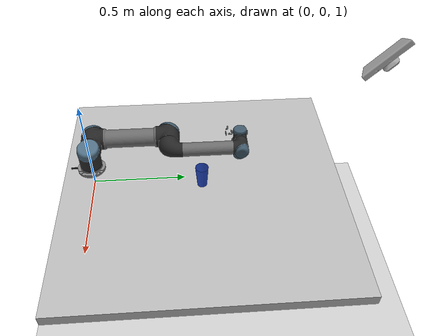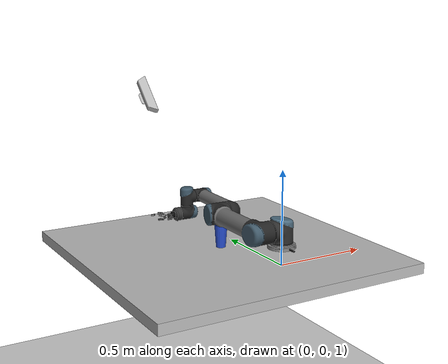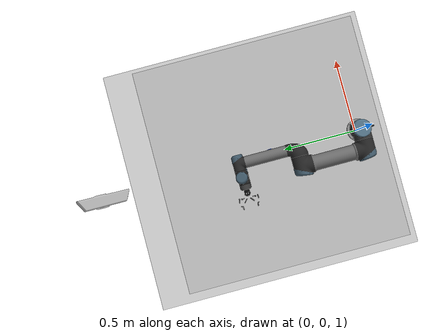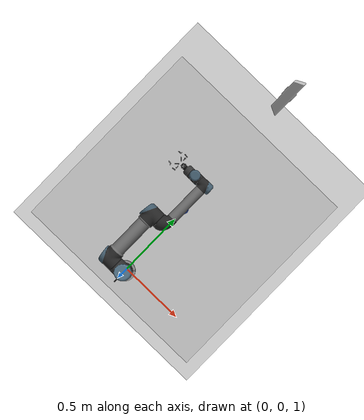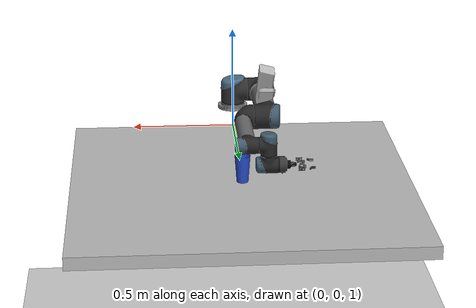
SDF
<sdf version="1.6">
 <world name="default">
  <light name="sun" type="directional">
   <pose>0 0 10 0 -0 0</pose>
   <diffuse>0.8 0.8 0.8 1</diffuse>
   <specular>0.1 0.1 0.1 1</specular>
   <attenuation>
    <range>1000</range>
    <constant>0.9</constant>
    <linear>0.01</linear>
    <quadratic>0.001</quadratic>
   </attenuation>
   <direction>-0.5 0.5 -1</direction>
  </light>
  <model name="ground_plane">
   <static>1</static>
   <link name="link">
    <collision name="collision">
     <geometry><plane><normal>0 0 1</normal><size>100 100</size></plane></geometry>
     <surface><friction><ode><mu>100</mu><mu2>50</mu2></ode></friction></surface>
    </collision>
    <visual name="visual">
     <cast_shadows>0</cast_shadows>
     <geometry><plane><normal>0 0 1</normal><size>100 100</size></plane></geometry>
     <material>
      <script><uri>file://media/materials/scripts/gazebo.material</uri><name>Gazebo/Grey</name></script>
     </material>
    </visual>
   </link>
  </model>
  <gravity>0 0 -9.8</gravity>
  <magnetic_field>6e-06 2.3e-05 -4.2e-05</magnetic_field>
  <atmosphere type="adiabatic"/>
  <physics name="default_physics" default="0" type="ode">
   <max_step_size>0.001</max_step_size>
   <real_time_factor>1</real_time_factor>
   <real_time_update_rate>1000</real_time_update_rate>
  </physics>
  <scene><ambient>0.4 0.4 0.4 1</ambient><background>0.7 0.7 0.7 1</background><shadows>1</shadows></scene>
  <spherical_coordinates>
   <surface_model>EARTH_WGS84</surface_model>
   <latitude_deg>0</latitude_deg>
   <longitude_deg>0</longitude_deg>
   <elevation>0</elevation>
   <heading_deg>0</heading_deg>
  </spherical_coordinates>
  <model name="robot">
   <link name="support_table">
    <pose>0 0.6 0.8 0 -0 0</pose>
    <inertial>
     <mass>1</mass>
     <inertia><ixx>1</ixx><ixy>0</ixy><ixz>0</ixz><iyy>100</iyy><iyz>0</iyz><izz>1</izz></inertia>
    </inertial>
    <collision name="support_table_collision">
     <geometry><box><size>1.6 1.6 0.06</size></box></geometry>
    </collision>
    <visual name="support_table_visual"><geometry><box><size>1.6 1.6 0.06</size></box></geometry></visual>
   </link>
   <joint name="attach_table" type="revolute">
    <child>support_table</child>
    <parent>world</parent>
    <axis>
     <limit><lower>0</lower><upper>0</upper></limit>
     <dynamics>
      <damping>0</damping>
      <friction>0</friction>
      <spring_reference>0</spring_reference>
      <spring_stiffness>0</spring_stiffness>
     </dynamics>
     <use_parent_model_frame>1</use_parent_model_frame>
     <xyz>0 0 1</xyz>
    </axis>
   </joint>
   <link name="base_link">
    <pose>0 0 1 0 -0 0</pose>
    <inertial>
     <pose>0 4e-06 2e-06 0 -0 0</pose>
     <mass>4.00001</mass>
     <inertia>
      <ixx>1.00446</ixx>
      <ixy>0</ixy>
      <ixz>0</ixz>
      <iyy>1.00444</iyy>
      <iyz>-8.99998e-06</iyz>
      <izz>1.00722</izz>
     </inertia>
    </inertial>
    <collision name="base_link_collision">
     <geometry>
      <mesh>
       <scale>1 1 1</scale>
       <uri>/home/shanchuan/rosp/catkin_vg/src/universal_robot/ur_description/meshes/ur5/collision/base.stl</uri>
      </mesh>
     </geometry>
    </collision>
    <collision name="base_link_fixed_joint_lump__kinect_link_collision_1">
     <pose>0 1.5 0.6 0 0.785398 -1.5708</pose>
     <geometry><box><size>0.07 0.3 0.09</size></box></geometry>
    </collision>
    <visual name="base_link_visual">
     <geometry>
      <mesh>
       <scale>1 1 1</scale>
       <uri>/home/shanchuan/rosp/catkin_vg/src/universal_robot/ur_description/meshes/ur5/visual/base.dae</uri>
      </mesh>
     </geometry>
    </visual>
    <visual name="base_link_fixed_joint_lump__kinect_link_visual_1">
     <pose>0 1.5 0.6 0.785398 -0 0</pose>
     <geometry>
      <mesh>
       <scale>1 1 1</scale>
       <uri>/home/shanchuan/rosp/catkin_vg/src/universal_robot/ur_description/meshes/sensors/kinect.dae</uri>
      </mesh>
     </geometry>
     <material><script><uri>__default__</uri><name>__default__</name></script></material>
    </visual>
    <sensor name="kinect" type="depth">
     <always_on>1</always_on>
     <update_rate>20</update_rate>
     <camera name="__default__">
      <horizontal_fov>1.0472</horizontal_fov>
      <image><format>R8G8B8</format><width>640</width><height>480</height></image>
      <clip><near>0.11</near><far>10</far></clip>
      <noise><type>gaussian</type><mean>0</mean><stddev>0.007</stddev></noise>
     </camera>
     <plugin name="kinect_controller" filename="libgazebo_ros_openni_kinect.so">
      <cameraName>kinect</cameraName>
      <alwaysOn>true</alwaysOn>
      <updateRate>10</updateRate>
      <imageTopicName>rgb/image_raw</imageTopicName>
      <depthImageTopicName>depth/image_raw</depthImageTopicName>
      <pointCloudTopicName>depth/points</pointCloudTopicName>
      <cameraInfoTopicName>rgb/camera_info</cameraInfoTopicName>
      <depthImageCameraInfoTopicName>depth/camera_info</depthImageCameraInfoTopicName>
      <frameName>kinect_link</frameName>
      <baseline>0.1</baseline>
      <distortion_k1>0.0</distortion_k1>
      <distortion_k2>0.0</distortion_k2>
      <distortion_k3>0.0</distortion_k3>
      <distortion_t1>0.0</distortion_t1>
      <distortion_t2>0.0</distortion_t2>
      <pointCloudCutoff>0.11</pointCloudCutoff>
      <CxPrime>0</CxPrime>
      <Cx>0</Cx>
      <Cy>0</Cy>
      <focalLength>0</focalLength>
      <hackBaseline>0</hackBaseline>
      <robotNamespace>/</robotNamespace>
     </plugin>
     <pose>0 1.5 0.6 0 0.785398 -1.5708</pose>
    </sensor>
   </link>
   <joint name="world_joint" type="revolute">
    <child>base_link</child>
    <parent>world</parent>
    <axis>
     <limit><lower>0</lower><upper>0</upper></limit>
     <dynamics>
      <damping>0</damping>
      <friction>0</friction>
      <spring_reference>0</spring_reference>
      <spring_stiffness>0</spring_stiffness>
     </dynamics>
     <use_parent_model_frame>1</use_parent_model_frame>
     <xyz>0 0 1</xyz>
    </axis>
   </joint>
   <link name="shoulder_link">
    <pose>0 0 1.08916 0 -0 1.5708</pose>
    <inertial>
     <mass>3.7</mass>
     <inertia>
      <ixx>0.0102675</ixx>
      <ixy>0</ixy>
      <ixz>0</ixz>
      <iyy>0.0102675</iyy>
      <iyz>0</iyz>
      <izz>0.00666</izz>
     </inertia>
    </inertial>
    <collision name="shoulder_link_collision">
     <geometry>
      <mesh>
       <scale>1 1 1</scale>
       <uri>/home/shanchuan/rosp/catkin_vg/src/universal_robot/ur_description/meshes/ur5/collision/shoulder.stl</uri>
      </mesh>
     </geometry>
    </collision>
    <visual name="shoulder_link_visual">
     <geometry>
      <mesh>
       <scale>1 1 1</scale>
       <uri>/home/shanchuan/rosp/catkin_vg/src/universal_robot/ur_description/meshes/ur5/visual/shoulder.dae</uri>
      </mesh>
     </geometry>
     <material><script><uri>__default__</uri><name>__default__</name></script></material>
    </visual>
    <self_collide>1</self_collide>
   </link>
   <joint name="shoulder_pan_joint" type="revolute">
    <child>shoulder_link</child>
    <parent>base_link</parent>
    <axis>
     <xyz>0 0 1</xyz>
     <limit><lower>-6.28319</lower><upper>6.28319</upper><effort>150</effort><velocity>3.15</velocity></limit>
     <dynamics>
      <damping>0</damping>
      <friction>0</friction>
      <spring_reference>0</spring_reference>
      <spring_stiffness>0</spring_stiffness>
     </dynamics>
     <use_parent_model_frame>1</use_parent_model_frame>
    </axis>
   </joint>
   <link name="upper_arm_link">
    <pose>-0.13585 0 1.08916 -3.14158 1.57079 -1.57078</pose>
    <inertial>
     <pose>0 0 0.28 0 -0 0</pose>
     <mass>8.393</mass>
     <inertia>
      <ixx>0.226891</ixx>
      <ixy>0</ixy>
      <ixz>0</ixz>
      <iyy>0.226891</iyy>
      <iyz>0</iyz>
      <izz>0.0151074</izz>
     </inertia>
    </inertial>
    <collision name="upper_arm_link_collision">
     <geometry>
      <mesh>
       <scale>1 1 1</scale>
       <uri>/home/shanchuan/rosp/catkin_vg/src/universal_robot/ur_description/meshes/ur5/collision/upperarm.stl</uri>
      </mesh>
     </geometry>
    </collision>
    <visual name="upper_arm_link_visual">
     <geometry>
      <mesh>
       <scale>1 1 1</scale>
       <uri>/home/shanchuan/rosp/catkin_vg/src/universal_robot/ur_description/meshes/ur5/visual/upperarm.dae</uri>
      </mesh>
     </geometry>
     <material><script><uri>__default__</uri><name>__default__</name></script></material>
    </visual>
    <self_collide>1</self_collide>
   </link>
   <joint name="shoulder_lift_joint" type="revolute">
    <child>upper_arm_link</child>
    <parent>shoulder_link</parent>
    <axis>
     <xyz>-1 0 0</xyz>
     <limit><lower>-6.28319</lower><upper>6.28319</upper><effort>150</effort><velocity>3.15</velocity></limit>
     <dynamics>
      <damping>0</damping>
      <friction>0</friction>
      <spring_reference>0</spring_reference>
      <spring_stiffness>0</spring_stiffness>
     </dynamics>
     <use_parent_model_frame>1</use_parent_model_frame>
    </axis>
   </joint>
   <link name="forearm_link">
    <pose>-0.01615 0.425 1.08916 -3.14158 1.57079 -1.57078</pose>
    <inertial>
     <pose>0 0 0.196125 0 -0 0</pose>
     <mass>2.275</mass>
     <inertia>
      <ixx>0.0312168</ixx>
      <ixy>0</ixy>
      <ixz>0</ixz>
      <iyy>0.0312168</iyy>
      <iyz>0</iyz>
      <izz>0.004095</izz>
     </inertia>
    </inertial>
    <collision name="forearm_link_collision">
     <geometry>
      <mesh>
       <scale>1 1 1</scale>
       <uri>/home/shanchuan/rosp/catkin_vg/src/universal_robot/ur_description/meshes/ur5/collision/forearm.stl</uri>
      </mesh>
     </geometry>
    </collision>
    <visual name="forearm_link_visual">
     <geometry>
      <mesh>
       <scale>1 1 1</scale>
       <uri>/home/shanchuan/rosp/catkin_vg/src/universal_robot/ur_description/meshes/ur5/visual/forearm.dae</uri>
      </mesh>
     </geometry>
     <material><script><uri>__default__</uri><name>__default__</name></script></material>
    </visual>
    <self_collide>1</self_collide>
   </link>
   <joint name="elbow_joint" type="revolute">
    <child>forearm_link</child>
    <parent>upper_arm_link</parent>
    <axis>
     <xyz>-1 0 0</xyz>
     <limit><lower>-3.14159</lower><upper>3.14159</upper><effort>150</effort><velocity>3.15</velocity></limit>
     <dynamics>
      <damping>0</damping>
      <friction>0</friction>
      <spring_reference>0</spring_reference>
      <spring_stiffness>0</spring_stiffness>
     </dynamics>
     <use_parent_model_frame>1</use_parent_model_frame>
    </axis>
   </joint>
   <link name="wrist_1_link">
    <pose>-0.01615 0.81725 1.08916 3.14159 -0 -1.5708</pose>
    <inertial>
     <pose>0 0.093 0 0 -0 0</pose>
     <mass>1.219</mass>
     <inertia>
      <ixx>0.0025599</ixx>
      <ixy>0</ixy>
      <ixz>0</ixz>
      <iyy>0.0025599</iyy>
      <iyz>0</iyz>
      <izz>0.0021942</izz>
     </inertia>
    </inertial>
    <collision name="wrist_1_link_collision">
     <geometry>
      <mesh>
       <scale>1 1 1</scale>
       <uri>/home/shanchuan/rosp/catkin_vg/src/universal_robot/ur_description/meshes/ur5/collision/wrist1.stl</uri>
      </mesh>
     </geometry>
    </collision>
    <visual name="wrist_1_link_visual">
     <geometry>
      <mesh>
       <scale>1 1 1</scale>
       <uri>/home/shanchuan/rosp/catkin_vg/src/universal_robot/ur_description/meshes/ur5/visual/wrist1.dae</uri>
      </mesh>
     </geometry>
     <material><script><uri>__default__</uri><name>__default__</name></script></material>
    </visual>
    <self_collide>1</self_collide>
   </link>
   <joint name="wrist_1_joint" type="revolute">
    <child>wrist_1_link</child>
    <parent>forearm_link</parent>
    <axis>
     <xyz>-1 0 0</xyz>
     <limit><lower>-6.28319</lower><upper>6.28319</upper><effort>28</effort><velocity>3.2</velocity></limit>
     <dynamics>
      <damping>0</damping>
      <friction>0</friction>
      <spring_reference>0</spring_reference>
      <spring_stiffness>0</spring_stiffness>
     </dynamics>
     <use_parent_model_frame>1</use_parent_model_frame>
    </axis>
   </joint>
   <link name="wrist_2_link">
    <pose>-0.10915 0.81725 1.08916 3.14159 -0 -1.5708</pose>
    <inertial>
     <pose>0 0 0.09465 0 -0 0</pose>
     <mass>1.219</mass>
     <inertia>
      <ixx>0.0025599</ixx>
      <ixy>0</ixy>
      <ixz>0</ixz>
      <iyy>0.0025599</iyy>
      <iyz>0</iyz>
      <izz>0.0021942</izz>
     </inertia>
    </inertial>
    <collision name="wrist_2_link_collision">
     <geometry>
      <mesh>
       <scale>1 1 1</scale>
       <uri>/home/shanchuan/rosp/catkin_vg/src/universal_robot/ur_description/meshes/ur5/collision/wrist2.stl</uri>
      </mesh>
     </geometry>
    </collision>
    <visual name="wrist_2_link_visual">
     <geometry>
      <mesh>
       <scale>1 1 1</scale>
       <uri>/home/shanchuan/rosp/catkin_vg/src/universal_robot/ur_description/meshes/ur5/visual/wrist2.dae</uri>
      </mesh>
     </geometry>
     <material><script><uri>__default__</uri><name>__default__</name></script></material>
    </visual>
    <self_collide>1</self_collide>
   </link>
   <joint name="wrist_2_joint" type="revolute">
    <child>wrist_2_link</child>
    <parent>wrist_1_link</parent>
    <axis>
     <xyz>0 0 -1</xyz>
     <limit><lower>-6.28319</lower><upper>6.28319</upper><effort>28</effort><velocity>3.2</velocity></limit>
     <dynamics>
      <damping>0</damping>
      <friction>0</friction>
      <spring_reference>0</spring_reference>
      <spring_stiffness>0</spring_stiffness>
     </dynamics>
     <use_parent_model_frame>1</use_parent_model_frame>
    </axis>
   </joint>
   <link name="wrist_3_link">
    <pose>-0.10915 0.81725 0.994509 3.14159 -0 -1.5708</pose>
    <inertial>
     <pose>0 0.078371 0 1.5708 -0 0</pose>
     <mass>0.824851</mass>
     <inertia>
      <ixx>0.00123787</ixx>
      <ixy>-1.75029e-26</ixy>
      <ixz>3.57451e-15</ixz>
      <iyy>0.00129887</iyy>
      <iyz>4.08461e-15</iyz>
      <izz>0.000512117</izz>
     </inertia>
    </inertial>
    <collision name="wrist_3_link_collision">
     <geometry>
      <mesh>
       <scale>1 1 1</scale>
       <uri>/home/shanchuan/rosp/catkin_vg/src/universal_robot/ur_description/meshes/ur5/collision/wrist3.stl</uri>
      </mesh>
     </geometry>
    </collision>
    <collision name="wrist_3_link_fixed_joint_lump__ee_link_collision_1">
     <pose>-0 0.0723 0 0 -0 1.5708</pose>
     <geometry><box><size>0.01 0.01 0.01</size></box></geometry>
    </collision>
    <collision name="wrist_3_link_fixed_joint_lump__gripper_base_link_collision_2">
     <pose>0 0.0823 0 0 -0 1.5708</pose>
     <geometry>
      <mesh>
       <scale>1 1 1</scale>
       <uri>/home/shanchuan/rosp/catkin_vg/src/robotiq_85_gripper/robotiq_85_description/meshes/collision/robotiq_85_base_link.stl</uri>
      </mesh>
     </geometry>
     <surface>
      <contact><ode><kp>1e+08</kp><kd>1</kd></ode></contact>
      <friction><ode><mu>100000</mu><mu2>100000</mu2></ode></friction>
     </surface>
    </collision>
    <visual name="wrist_3_link_visual">
     <geometry>
      <mesh>
       <scale>1 1 1</scale>
       <uri>/home/shanchuan/rosp/catkin_vg/src/universal_robot/ur_description/meshes/ur5/visual/wrist3.dae</uri>
      </mesh>
     </geometry>
     <material><script><uri>__default__</uri><name>__default__</name></script></material>
    </visual>
    <visual name="wrist_3_link_fixed_joint_lump__gripper_base_link_visual_1">
     <pose>0 0.0823 0 0 -0 1.5708</pose>
     <geometry>
      <mesh>
       <scale>1 1 1</scale>
       <uri>/home/shanchuan/rosp/catkin_vg/src/robotiq_85_gripper/robotiq_85_description/meshes/visual/robotiq_85_base_link.dae</uri>
      </mesh>
     </geometry>
     <material><script><uri>__default__</uri><name>__default__</name></script></material>
    </visual>
   </link>
   <joint name="wrist_3_joint" type="revolute">
    <child>wrist_3_link</child>
    <parent>wrist_2_link</parent>
    <axis>
     <xyz>-1 0 0</xyz>
     <limit><lower>-6.28319</lower><upper>6.28319</upper><effort>28</effort><velocity>3.2</velocity></limit>
     <dynamics>
      <damping>0</damping>
      <friction>0</friction>
      <spring_reference>0</spring_reference>
      <spring_stiffness>0</spring_stiffness>
     </dynamics>
     <use_parent_model_frame>1</use_parent_model_frame>
    </axis>
   </joint>
   <link name="gripper_finger1_inner_knuckle_link">
    <pose>-0.25287 0.82995 0.994509 -0 -0 -3.14159</pose>
    <inertial>
     <mass>0.029951</mass>
     <inertia><ixx>3.9e-05</ixx><ixy>0</ixy><ixz>0</ixz><iyy>5e-06</iyy><iyz>0</iyz><izz>3.5e-05</izz></inertia>
    </inertial>
    <collision name="gripper_finger1_inner_knuckle_link_collision">
     <geometry>
      <mesh>
       <scale>1 1 1</scale>
       <uri>/home/shanchuan/rosp/catkin_vg/src/robotiq_85_gripper/robotiq_85_description/meshes/collision/robotiq_85_inner_knuckle_link.stl</uri>
      </mesh>
     </geometry>
     <surface>
      <contact><ode><kp>1e+08</kp><kd>1</kd></ode></contact>
      <friction><ode><mu>100000</mu><mu2>100000</mu2></ode></friction>
     </surface>
    </collision>
    <visual name="gripper_finger1_inner_knuckle_link_visual">
     <geometry>
      <mesh>
       <scale>1 1 1</scale>
       <uri>/home/shanchuan/rosp/catkin_vg/src/robotiq_85_gripper/robotiq_85_description/meshes/visual/robotiq_85_inner_knuckle_link.dae</uri>
      </mesh>
     </geometry>
     <material><script><uri>__default__</uri><name>__default__</name></script></material>
    </visual>
   </link>
   <joint name="gripper_finger1_inner_knuckle_joint" type="revolute">
    <child>gripper_finger1_inner_knuckle_link</child>
    <parent>wrist_3_link</parent>
    <axis>
     <xyz>0 0 1</xyz>
     <limit><lower>-1e+16</lower><upper>1e+16</upper></limit>
     <dynamics><spring_reference>0</spring_reference><spring_stiffness>0</spring_stiffness></dynamics>
     <use_parent_model_frame>1</use_parent_model_frame>
    </axis>
   </joint>
   <link name="gripper_finger1_finger_tip_link">
    <pose>-0.29591 0.867549 0.994509 -0 -0 -3.14159</pose>
    <inertial>
     <mass>0.019555</mass>
     <inertia><ixx>2e-06</ixx><ixy>0</ixy><ixz>0</ixz><iyy>5e-06</iyy><iyz>0</iyz><izz>6e-06</izz></inertia>
    </inertial>
    <collision name="gripper_finger1_finger_tip_link_collision">
     <geometry>
      <mesh>
       <scale>1 1 1</scale>
       <uri>/home/shanchuan/rosp/catkin_vg/src/robotiq_85_gripper/robotiq_85_description/meshes/collision/robotiq_85_finger_tip_link.stl</uri>
      </mesh>
     </geometry>
     <surface>
      <contact><ode><kp>1e+08</kp><kd>1</kd></ode></contact>
      <friction><ode><mu>100000</mu><mu2>100000</mu2></ode></friction>
     </surface>
    </collision>
    <visual name="gripper_finger1_finger_tip_link_visual">
     <geometry>
      <mesh>
       <scale>1 1 1</scale>
       <uri>/home/shanchuan/rosp/catkin_vg/src/robotiq_85_gripper/robotiq_85_description/meshes/visual/robotiq_85_finger_tip_link.dae</uri>
      </mesh>
     </geometry>
     <material><script><uri>__default__</uri><name>__default__</name></script></material>
    </visual>
   </link>
   <joint name="gripper_finger1_finger_tip_joint" type="revolute">
    <child>gripper_finger1_finger_tip_link</child>
    <parent>gripper_finger1_inner_knuckle_link</parent>
    <axis>
     <xyz>0 0 1</xyz>
     <limit><lower>-1e+16</lower><upper>1e+16</upper></limit>
     <dynamics><spring_reference>0</spring_reference><spring_stiffness>0</spring_stiffness></dynamics>
     <use_parent_model_frame>1</use_parent_model_frame>
    </axis>
   </joint>
   <link name="gripper_finger1_knuckle_link">
    <pose>-0.246355 0.847851 0.994509 -0 -0 -3.14159</pose>
    <inertial>
     <pose>-0.002436 -0.018774 0 0 -0 0</pose>
     <mass>0.0458</mass>
     <inertia>
      <ixx>2.29304e-05</ixx>
      <ixy>-4.4183e-06</ixy>
      <ixz>0</ixz>
      <iyy>2.2184e-05</iyy>
      <iyz>0</iyz>
      <izz>4.11145e-05</izz>
     </inertia>
    </inertial>
    <collision name="gripper_finger1_knuckle_link_collision">
     <geometry>
      <mesh>
       <scale>1 1 1</scale>
       <uri>/home/shanchuan/rosp/catkin_vg/src/robotiq_85_gripper/robotiq_85_description/meshes/collision/robotiq_85_knuckle_link.stl</uri>
      </mesh>
     </geometry>
     <surface>
      <contact><ode><kp>1e+08</kp><kd>1</kd></ode></contact>
      <friction><ode><mu>100000</mu><mu2>100000</mu2></ode></friction>
     </surface>
    </collision>
    <collision name="gripper_finger1_knuckle_link_fixed_joint_lump__gripper_finger1_finger_link_collision_1">
     <pose>-0.004086 -0.031486 0 0 -0 0</pose>
     <geometry>
      <mesh>
       <scale>1 1 1</scale>
       <uri>/home/shanchuan/rosp/catkin_vg/src/robotiq_85_gripper/robotiq_85_description/meshes/collision/robotiq_85_finger_link.stl</uri>
      </mesh>
     </geometry>
     <surface>
      <contact><ode><kp>1e+08</kp><kd>1</kd></ode></contact>
      <friction><ode><mu>100000</mu><mu2>100000</mu2></ode></friction>
     </surface>
    </collision>
    <visual name="gripper_finger1_knuckle_link_visual">
     <geometry>
      <mesh>
       <scale>1 1 1</scale>
       <uri>/home/shanchuan/rosp/catkin_vg/src/robotiq_85_gripper/robotiq_85_description/meshes/visual/robotiq_85_knuckle_link.dae</uri>
      </mesh>
     </geometry>
     <material><script><uri>__default__</uri><name>__default__</name></script></material>
    </visual>
    <visual name="gripper_finger1_knuckle_link_fixed_joint_lump__gripper_finger1_finger_link_visual_1">
     <pose>-0.004086 -0.031486 0 0 -0 0</pose>
     <geometry>
      <mesh>
       <scale>1 1 1</scale>
       <uri>/home/shanchuan/rosp/catkin_vg/src/robotiq_85_gripper/robotiq_85_description/meshes/visual/robotiq_85_finger_link.dae</uri>
      </mesh>
     </geometry>
     <material><script><uri>__default__</uri><name>__default__</name></script></material>
    </visual>
   </link>
   <joint name="gripper_finger1_joint" type="revolute">
    <child>gripper_finger1_knuckle_link</child>
    <parent>wrist_3_link</parent>
    <axis>
     <xyz>0 0 1</xyz>
     <limit><lower>0</lower><upper>0.804</upper><effort>1000</effort><velocity>2</velocity></limit>
     <dynamics><spring_reference>0</spring_reference><spring_stiffness>0</spring_stiffness></dynamics>
     <use_parent_model_frame>1</use_parent_model_frame>
    </axis>
   </joint>
   <link name="gripper_finger2_inner_knuckle_link">
    <pose>-0.25287 0.80455 0.994509 3.14159 -0 -3.14159</pose>
    <inertial>
     <mass>0.029951</mass>
     <inertia><ixx>3.9e-05</ixx><ixy>0</ixy><ixz>0</ixz><iyy>5e-06</iyy><iyz>0</iyz><izz>3.5e-05</izz></inertia>
    </inertial>
    <collision name="gripper_finger2_inner_knuckle_link_collision">
     <geometry>
      <mesh>
       <scale>1 1 1</scale>
       <uri>/home/shanchuan/rosp/catkin_vg/src/robotiq_85_gripper/robotiq_85_description/meshes/collision/robotiq_85_inner_knuckle_link.stl</uri>
      </mesh>
     </geometry>
     <surface>
      <contact><ode><kp>1e+08</kp><kd>1</kd></ode></contact>
      <friction><ode><mu>100000</mu><mu2>100000</mu2></ode></friction>
     </surface>
    </collision>
    <visual name="gripper_finger2_inner_knuckle_link_visual">
     <geometry>
      <mesh>
       <scale>1 1 1</scale>
       <uri>/home/shanchuan/rosp/catkin_vg/src/robotiq_85_gripper/robotiq_85_description/meshes/visual/robotiq_85_inner_knuckle_link.dae</uri>
      </mesh>
     </geometry>
     <material><script><uri>__default__</uri><name>__default__</name></script></material>
    </visual>
   </link>
   <joint name="gripper_finger2_inner_knuckle_joint" type="revolute">
    <child>gripper_finger2_inner_knuckle_link</child>
    <parent>wrist_3_link</parent>
    <axis>
     <xyz>0 0 -1</xyz>
     <limit><lower>-1e+16</lower><upper>1e+16</upper></limit>
     <dynamics><spring_reference>0</spring_reference><spring_stiffness>0</spring_stiffness></dynamics>
     <use_parent_model_frame>1</use_parent_model_frame>
    </axis>
   </joint>
   <link name="gripper_finger2_finger_tip_link">
    <pose>-0.29591 0.766951 0.994509 3.14159 -0 -3.14159</pose>
    <inertial>
     <mass>0.019555</mass>
     <inertia><ixx>2e-06</ixx><ixy>0</ixy><ixz>0</ixz><iyy>5e-06</iyy><iyz>0</iyz><izz>6e-06</izz></inertia>
    </inertial>
    <collision name="gripper_finger2_finger_tip_link_collision">
     <geometry>
      <mesh>
       <scale>1 1 1</scale>
       <uri>/home/shanchuan/rosp/catkin_vg/src/robotiq_85_gripper/robotiq_85_description/meshes/collision/robotiq_85_finger_tip_link.stl</uri>
      </mesh>
     </geometry>
     <surface>
      <contact><ode><kp>1e+08</kp><kd>1</kd></ode></contact>
      <friction><ode><mu>100000</mu><mu2>100000</mu2></ode></friction>
     </surface>
    </collision>
    <visual name="gripper_finger2_finger_tip_link_visual">
     <geometry>
      <mesh>
       <scale>1 1 1</scale>
       <uri>/home/shanchuan/rosp/catkin_vg/src/robotiq_85_gripper/robotiq_85_description/meshes/visual/robotiq_85_finger_tip_link.dae</uri>
      </mesh>
     </geometry>
     <material><script><uri>__default__</uri><name>__default__</name></script></material>
    </visual>
   </link>
   <joint name="gripper_finger2_finger_tip_joint" type="revolute">
    <child>gripper_finger2_finger_tip_link</child>
    <parent>gripper_finger2_inner_knuckle_link</parent>
    <axis>
     <xyz>0 0 -1</xyz>
     <limit><lower>-1e+16</lower><upper>1e+16</upper></limit>
     <dynamics><spring_reference>0</spring_reference><spring_stiffness>0</spring_stiffness></dynamics>
     <use_parent_model_frame>1</use_parent_model_frame>
    </axis>
   </joint>
   <link name="gripper_finger2_knuckle_link">
    <pose>-0.246355 0.786649 0.994509 3.14159 -0 -3.14159</pose>
    <inertial>
     <pose>-0.002436 -0.018774 0 0 -0 0</pose>
     <mass>0.0458</mass>
     <inertia>
      <ixx>2.29304e-05</ixx>
      <ixy>-4.4183e-06</ixy>
      <ixz>0</ixz>
      <iyy>2.2184e-05</iyy>
      <iyz>0</iyz>
      <izz>4.11145e-05</izz>
     </inertia>
    </inertial>
    <collision name="gripper_finger2_knuckle_link_collision">
     <geometry>
      <mesh>
       <scale>1 1 1</scale>
       <uri>/home/shanchuan/rosp/catkin_vg/src/robotiq_85_gripper/robotiq_85_description/meshes/collision/robotiq_85_knuckle_link.stl</uri>
      </mesh>
     </geometry>
     <surface>
      <contact><ode><kp>1e+08</kp><kd>1</kd></ode></contact>
      <friction><ode><mu>100000</mu><mu2>100000</mu2></ode></friction>
     </surface>
    </collision>
    <collision name="gripper_finger2_knuckle_link_fixed_joint_lump__gripper_finger2_finger_link_collision_1">
     <pose>-0.004086 -0.031486 0 0 -0 0</pose>
     <geometry>
      <mesh>
       <scale>1 1 1</scale>
       <uri>/home/shanchuan/rosp/catkin_vg/src/robotiq_85_gripper/robotiq_85_description/meshes/collision/robotiq_85_finger_link.stl</uri>
      </mesh>
     </geometry>
     <surface>
      <contact><ode><kp>1e+08</kp><kd>1</kd></ode></contact>
      <friction><ode><mu>100000</mu><mu2>100000</mu2></ode></friction>
     </surface>
    </collision>
    <visual name="gripper_finger2_knuckle_link_visual">
     <geometry>
      <mesh>
       <scale>1 1 1</scale>
       <uri>/home/shanchuan/rosp/catkin_vg/src/robotiq_85_gripper/robotiq_85_description/meshes/visual/robotiq_85_knuckle_link.dae</uri>
      </mesh>
     </geometry>
     <material><script><uri>__default__</uri><name>__default__</name></script></material>
    </visual>
    <visual name="gripper_finger2_knuckle_link_fixed_joint_lump__gripper_finger2_finger_link_visual_1">
     <pose>-0.004086 -0.031486 0 0 -0 0</pose>
     <geometry>
      <mesh>
       <scale>1 1 1</scale>
       <uri>/home/shanchuan/rosp/catkin_vg/src/robotiq_85_gripper/robotiq_85_description/meshes/visual/robotiq_85_finger_link.dae</uri>
      </mesh>
     </geometry>
     <material><script><uri>__default__</uri><name>__default__</name></script></material>
    </visual>
   </link>
   <joint name="gripper_finger2_joint" type="revolute">
    <child>gripper_finger2_knuckle_link</child>
    <parent>wrist_3_link</parent>
    <axis>
     <xyz>0 0 -1</xyz>
     <limit><lower>-3.14</lower><upper>3.14</upper><effort>1000</effort><velocity>100</velocity></limit>
     <dynamics><spring_reference>0</spring_reference><spring_stiffness>0</spring_stiffness></dynamics>
     <use_parent_model_frame>1</use_parent_model_frame>
    </axis>
   </joint>
   <plugin name="ros_control" filename="libgazebo_ros_control.so">
    <legacyModeNS>true</legacyModeNS>
    <robotNamespace>/</robotNamespace>
   </plugin>
   <static>0</static>
   <plugin name="mimic_robotiq_85_1" filename="libroboticsgroup_gazebo_mimic_joint_plugin.so">
    <joint>gripper_finger1_joint</joint>
    <mimicJoint>gripper_finger2_joint</mimicJoint>
    <robotNamespace>/</robotNamespace>
   </plugin>
   <plugin name="mimic_robotiq_85_2" filename="libroboticsgroup_gazebo_mimic_joint_plugin.so">
    <joint>gripper_finger1_joint</joint>
    <mimicJoint>gripper_finger2_inner_knuckle_joint</mimicJoint>
    <robotNamespace>/</robotNamespace>
   </plugin>
   <plugin name="mimic_robotiq_85_3" filename="libroboticsgroup_gazebo_mimic_joint_plugin.so">
    <joint>gripper_finger1_joint</joint>
    <mimicJoint>gripper_finger1_inner_knuckle_joint</mimicJoint>
    <robotNamespace>/</robotNamespace>
   </plugin>
   <plugin name="mimic_robotiq_85_4" filename="libroboticsgroup_gazebo_mimic_joint_plugin.so">
    <joint>gripper_finger1_joint</joint>
    <mimicJoint>gripper_finger1_finger_tip_joint</mimicJoint>
    <multiplier>-1.0</multiplier>
    <offset>0.0</offset>
    <robotNamespace>/</robotNamespace>
   </plugin>
   <plugin name="mimic_robotiq_85_5" filename="libroboticsgroup_gazebo_mimic_joint_plugin.so">
    <joint>gripper_finger1_joint</joint>
    <mimicJoint>gripper_finger2_finger_tip_joint</mimicJoint>
    <multiplier>-1.0</multiplier>
    <offset>0.0</offset>
    <robotNamespace>/</robotNamespace>
   </plugin>
   <pose>0 0 0.1 0 -0 0</pose>
  </model>
  <model name="plastic_cup">
   <link name="link">
    <pose>0 0 0.065 0 -0 0</pose>
    <inertial>
     <mass>0.0599</mass>
     <inertia>
      <ixx>0.000302896</ixx>
      <ixy>0</ixy>
      <ixz>0</ixz>
      <iyy>0.000302896</iyy>
      <iyz>0</iyz>
      <izz>3.28764e-05</izz>
     </inertia>
    </inertial>
    <collision name="collision">
     <geometry><mesh><uri>model://plastic_cup/meshes/plastic_cup.dae</uri><scale>1 1 1</scale></mesh></geometry>
     <surface>
      <contact>
       <poissons_ratio>0.35</poissons_ratio>
       <elastic_modulus>3.10264e+09</elastic_modulus>
       <ode><kp>100000</kp><kd>100</kd><max_vel>100</max_vel><min_depth>0.001</min_depth></ode>
      </contact>
      <friction>
       <torsional>
        <coefficient>1</coefficient>
        <use_patch_radius>0</use_patch_radius>
        <surface_radius>0.01</surface_radius>
       </torsional>
      </friction>
     </surface>
    </collision>
    <visual name="visual">
     <geometry><mesh><uri>model://plastic_cup/meshes/plastic_cup.dae</uri><scale>1 1 1</scale></mesh></geometry>
     <material>
      <script><uri>file://media/materials/scripts/gazebo.material</uri><name>Gazebo/Blue</name></script>
     </material>
    </visual>
   </link>
   <pose>7.5e-05 0.602775 0.937646 4.5e-05 -3e-05 2.05339</pose>
  </model>
 </world>
</sdf>
